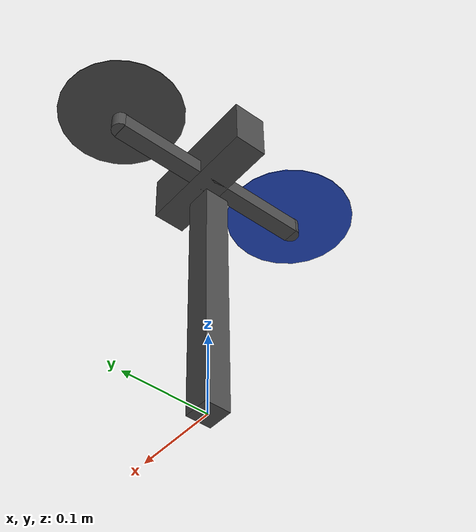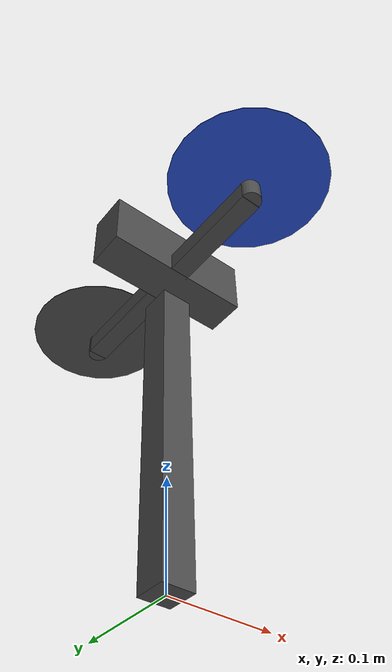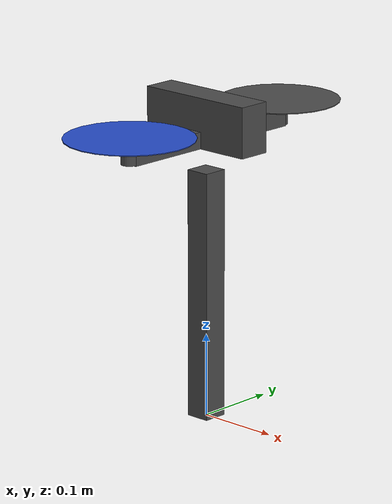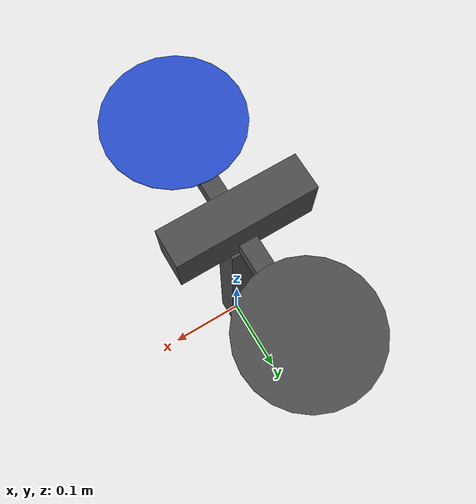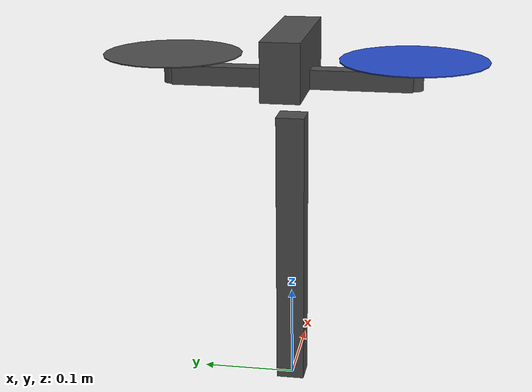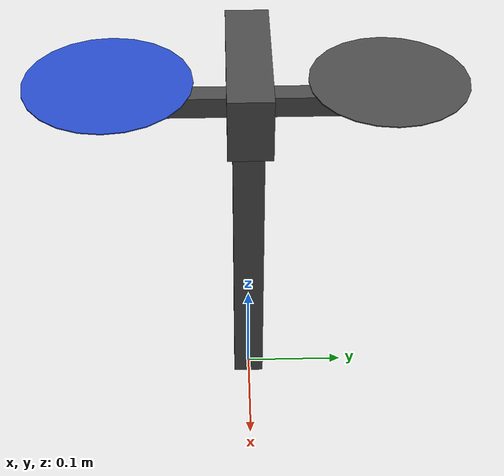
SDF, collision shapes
<?xml version="1.0"?>

<sdf version='1.5'>
  <model name='bicopter'>
    <pose>0 0 0 0 0 0</pose>
    <link name='test_stand_link'>
      <pose>0 0 0.15 0 0 0</pose>
      <inertial>
        <pose>0 0 0 0 0 0</pose>
        <mass>1000</mass>
        <inertia>
          <ixx>1.97563</ixx>
          <ixy>0</ixy>
          <ixz>0</ixz>
          <iyy>1.458929</iyy>
          <iyz>0</iyz>
          <izz>1.477</izz>
        </inertia>
      </inertial>
      <collision name='test_stand_link_collision'>
        <pose>0 0 0 0 0 0</pose>
        <geometry>
          <box>
            <size>0.03 0.03 0.3</size>
          </box>
        </geometry>
      </collision>
      <visual name='test_stand_link_visual'>
        <pose>0 0 0 0 0 0</pose>
        <geometry>
          <box>
            <size>0.03 0.03 0.3</size>
          </box>
        </geometry>
        <material>
          <script>
            <name>Gazebo/DarkGrey</name>
            <uri>__default__</uri>
          </script>
        </material>
      </visual>
      <gravity>1</gravity>
      <velocity_decay/>
      <self_collide>0</self_collide>
    </link>
    <joint name='stand/bicopter' type='ball'>
      <child>base_link</child>
      <parent>test_stand_link</parent>
      <pose>0 0 0.03 0 0 0</pose>
      <axis>
        <xyz>1 0 0</xyz>
        <limit>
          <lower>-1.5</lower>
          <upper>1.5</upper>
          <effort>0</effort>
          <velocity>0</velocity>
        </limit>
        <dynamics>
          <spring_reference>0</spring_reference>
          <spring_stiffness>0</spring_stiffness>
        </dynamics>
        <use_parent_model_frame>1</use_parent_model_frame>
      </axis>
      <axis2>
        <xyz>0 1 0</xyz>
        <limit>
          <lower>-1.5</lower>
          <upper>1.5</upper>
          <effort>0</effort>
          <velocity>0</velocity>
        </limit>
        <dynamics>
          <spring_reference>0</spring_reference>
          <spring_stiffness>0</spring_stiffness>
        </dynamics>
        <use_parent_model_frame>1</use_parent_model_frame>
      </axis2>
      <ode>
        <limit>
          <erp>1</erp>
        </limit>
      </ode>
    </joint>

    <link name='base_link'>
      <pose>0 0 0.33 0 0 0</pose>
      <inertial>
        <pose>0 0 0 0 0 0</pose>
        <mass>0.7</mass>
        <inertia>
          <ixx>1.8958E-04</ixx>
          <ixy>0</ixy>
          <ixz>0</ixz>
          <iyy>	1.4306E-03</iyy>
          <iyz>0</iyz>
          <izz>1.3840E-03</izz>
        </inertia>
      </inertial>
      <collision name='base_link_collision'>
        <pose>0 0 0.03 0 0 0</pose>
        <geometry>
          <box>
            <size>0.15 0.04 0.06</size>
          </box>
        </geometry>
        <surface>
          <contact>
            <ode>
              <max_vel>10</max_vel>
              <min_depth>0.01</min_depth>
            </ode>
          </contact>
        </surface>
      </collision>
      <visual name='base_link_visual'>
        <pose>0 0 0.03 0 0 0</pose>
        <geometry>
          <box>
            <size>0.15 0.04 0.06</size>
          </box>
        </geometry>
        <material>
          <script>
            <name>Gazebo/DarkGrey</name>
            <uri>__default__</uri>
          </script>
        </material>
      </visual>
      <collision name='motor_column_collision'>
        <pose>0 0 0.01 0 0 0</pose>
        <geometry>
          <box>
            <size>0.02 0.25 0.02</size>
          </box>
        </geometry>
        <surface>
          <contact>
            <ode>
              <max_vel>10</max_vel>
              <min_depth>0.01</min_depth>
            </ode>
          </contact>
        </surface>
      </collision>
      <visual name='left_motor_column'>
        <pose>0 0.0625 0.01 0 0 0</pose>
        <geometry>
          <box>
            <size>0.02 0.125 0.02</size>
          </box>
        </geometry>
        <material>
          <script>
            <name>Gazebo/DarkGrey</name>
            <uri>__default__</uri>
          </script>
        </material>
      </visual>
      <visual name='right_motor_column'>
        <pose>0 -0.0625 0.01 0 0 0</pose>
        <geometry>
          <box>
            <size>0.02 0.125 0.02</size>
          </box>
        </geometry>
        <material>
          <script>
            <name>Gazebo/DarkGrey</name>
            <uri>__default__</uri>
          </script>
        </material>
      </visual>
      <gravity>1</gravity>
      <velocity_decay/>
      <self_collide>0</self_collide>
    </link>
    <link name='bicopter/imu_link'>
      <pose>0 0 0.36 0 0 0</pose>
      <inertial>
        <pose>0 0 0 0 0 0</pose>
        <mass>0.015</mass>
        <inertia>
          <ixx>1e-05</ixx>
          <ixy>0</ixy>
          <ixz>0</ixz>
          <iyy>1e-05</iyy>
          <iyz>0</iyz>
          <izz>1e-05</izz>
        </inertia>
      </inertial>
    </link>
    <joint name='bicopter/imu_joint' type='revolute'>
      <child>bicopter/imu_link</child>
      <parent>base_link</parent>
      <axis>
        <xyz>1 0 0</xyz>
        <limit>
          <lower>0</lower>
          <upper>0</upper>
          <effort>0</effort>
          <velocity>0</velocity>
        </limit>
        <dynamics>
          <spring_reference>0</spring_reference>
          <spring_stiffness>0</spring_stiffness>
        </dynamics>
        <use_parent_model_frame>1</use_parent_model_frame>
      </axis>
    </joint>

    <link name='motor_0'>
      <pose>0 -0.125 0.341 0 0 0</pose>
      <inertial>
        <pose>0 0 0 0 0 0</pose>
        <mass>0.030</mass>
        <inertia>
          <ixx>2.2695E-06</ixx>
          <ixy>0</ixy>
          <ixz>0</ixz>
          <iyy>2.2695E-06</iyy>
          <iyz>0</iyz>
          <izz>2.9190E-06</izz>
        </inertia>
      </inertial>
      <collision name='motor_0_collision'>
        <pose>0 0 0 0 0 0</pose>
        <geometry>
          <cylinder>
            <length>0.02</length>
            <radius>0.01</radius>
          </cylinder>
        </geometry>
        <surface>
          <contact>
            <ode/>
          </contact>
          <friction>
            <ode/>
          </friction>
        </surface>
      </collision>
      <visual name='motor_0_visual'>
        <pose>0 0 0 0 0 0</pose>
        <geometry>
          <cylinder>
            <length>0.02</length>
            <radius>0.01</radius>
          </cylinder>
        </geometry>
        <material>
          <script>
            <name>Gazebo/DarkGrey</name>
            <uri>__default__</uri>
          </script>
        </material>
      </visual>
      <gravity>1</gravity>
      <velocity_decay/>
      <self_collide>0</self_collide>
    </link>

    <link name='motor_0_intermediate'>
      <pose>0 -0.125 0.361 0 0 0</pose>
      <inertial>
        <pose>0 0 0 0 0 0</pose>
        <mass>0.015</mass>
        <inertia>
          <ixx>2.4100E-06</ixx>
          <ixy>0</ixy>
          <ixz>0</ixz>
          <iyy>2.4100E-06</iyy>
          <iyz>0</iyz>
          <izz>1.2100E-06</izz>
        </inertia>
      </inertial>
      <gravity>0</gravity>
      <velocity_decay/>
      <self_collide>0</self_collide>
    </link>

    <joint name='motor_0_joint_a' type='revolute'>
      <child>motor_0_intermediate</child>
      <parent>base_link</parent>
      <pose>0 0 0 0 0 0</pose>
      <axis>
        <xyz>0 1 0</xyz>
        <limit>
          <velocity>15</velocity>
        </limit>
        <dynamics>
          <spring_reference>0</spring_reference>
          <spring_stiffness>1</spring_stiffness>
          <damping>0.01</damping>
        </dynamics>
        <use_parent_model_frame>1</use_parent_model_frame>
      </axis>
      <physics>
        <ode>
          <erp>1</erp>
        </ode>
      </physics>
    </joint>
    <joint name='motor_0_joint_b' type='revolute'>
      <child>motor_0</child>
      <parent>motor_0_intermediate</parent>
      <pose>0 0 0.02 0 0 0</pose>
      <axis>
        <xyz>1 0 0</xyz>
        <limit>
          <velocity>15</velocity>
        </limit>
        <dynamics>
          <spring_reference>0</spring_reference>
          <spring_stiffness>1</spring_stiffness>
          <damping>0.01</damping>
        </dynamics>
        <use_parent_model_frame>1</use_parent_model_frame>
      </axis>
      <physics>
        <ode>
          <erp>1</erp>
        </ode>
      </physics>
    </joint>

    <link name='rotor_0'>
      <pose>0 -0.125 0.361 0 0 0</pose>
      <inertial>
        <pose>0 0 0 0 0 0</pose>
        <mass>0.01</mass>
        <inertia>
          <ixx>9.0833E-08</ixx>
          <ixy>0</ixy>
          <ixz>0</ixz>
          <iyy>1.9261E-06</iyy>
          <iyz>0</iyz>
          <izz>1.9337E-06</izz>
        </inertia>
      </inertial>
      <collision name='rotor_0_collision'>
        <pose>0 0 0 0 0 0</pose>
        <geometry>
          <cylinder>
            <length>0.001</length>
            <radius>0.0762</radius>
          </cylinder>
        </geometry>
        <surface>
          <contact>
            <ode/>
          </contact>
          <friction>
            <ode/>
          </friction>
        </surface>
      </collision>
      <visual name='rotor_0_visual'>
        <pose>0.001750 0 0 0 0 0</pose>
        <geometry>
          <mesh>
            <scale>0.38 0.38 0.38</scale>
            <uri>model://tiltrotor/meshes/iris_prop_ccw.dae</uri>
          </mesh>
        </geometry>
        <material>
          <script>
            <name>Gazebo/Blue</name>
            <uri>__default__</uri>
          </script>
        </material>
      </visual>
      <gravity>1</gravity>
      <velocity_decay/>
      <self_collide>0</self_collide>
    </link>
    <joint name='rotor_0_joint' type='revolute'>
      <child>rotor_0</child>
      <parent>motor_0</parent>
      <axis>
        <xyz>0 0 1</xyz>
        <limit>
          <lower>-1e+16</lower>
          <upper>1e+16</upper>
        </limit>
        <dynamics>
          <spring_reference>0</spring_reference>
          <spring_stiffness>0</spring_stiffness>
        </dynamics>
        <use_parent_model_frame>1</use_parent_model_frame>
      </axis>
      <physics>
        <ode>
          <erp>1</erp>
        </ode>
      </physics>
    </joint>

    <link name='motor_1'>
      <pose>0 0.125 0.341 0 0 0</pose>
      <inertial>
        <pose>0 0 0 0 0 0</pose>
        <mass>0.030</mass>
        <inertia>
          <ixx>2.2695E-06</ixx>
          <ixy>0</ixy>
          <ixz>0</ixz>
          <iyy>	2.2695E-06</iyy>
          <iyz>0</iyz>
          <izz>2.9190E-06</izz>
        </inertia>
      </inertial>
      <collision name='motor_1_collision'>
        <pose>0 0 0 0 0 0</pose>
        <geometry>
          <cylinder>
            <length>0.02</length>
            <radius>0.01</radius>
          </cylinder>
        </geometry>
        <surface>
          <contact>
            <ode/>
          </contact>
          <friction>
            <ode/>
          </friction>
        </surface>
      </collision>
      <visual name='motor_1_visual'>
        <pose>0.001750 0 0 0 0 0</pose>
        <geometry>
          <cylinder>
            <length>0.02</length>
            <radius>0.01</radius>
          </cylinder>
        </geometry>
        <material>
          <script>
            <name>Gazebo/DarkGrey</name>
            <uri>__default__</uri>
          </script>
        </material>
      </visual>
      <gravity>1</gravity>
      <velocity_decay/>
      <self_collide>0</self_collide>
    </link>

    <link name='motor_1_intermediate'>
      <pose>0 0.125 0.361 0 0 0</pose>
      <inertial>
        <pose>0 0 0 0 0 0</pose>
        <mass>0.015</mass>
        <inertia>
          <ixx>2.4100E-06</ixx>
          <ixy>0</ixy>
          <ixz>0</ixz>
          <iyy>2.4100E-06</iyy>
          <iyz>0</iyz>
          <izz>1.2100E-06</izz>
        </inertia>
      </inertial>
      <gravity>0</gravity>
      <velocity_decay/>
      <self_collide>0</self_collide>
    </link>

    <joint name='motor_1_joint_a' type='revolute'>
      <child>motor_1_intermediate</child>
      <parent>base_link</parent>
      <pose>0 0 0 0 0 0</pose>
      <axis>
        <xyz>0 1 0</xyz>
        <limit>
          <velocity>15</velocity>
        </limit>
        <dynamics>
          <spring_reference>0</spring_reference>
          <spring_stiffness>1</spring_stiffness>
          <damping>0.01</damping>
        </dynamics>
        <use_parent_model_frame>1</use_parent_model_frame>
      </axis>
      <physics>
        <ode>
          <erp>1</erp>
        </ode>
      </physics>
    </joint>
    <joint name='motor_1_joint_b' type='revolute'>
      <child>motor_1</child>
      <parent>motor_1_intermediate</parent>
      <pose>0 0 0.02 0 0 0</pose>
      <axis>
        <xyz>1 0 0</xyz>
        <limit>
          <velocity>15</velocity>
        </limit>
        <dynamics>
          <spring_reference>0</spring_reference>
          <spring_stiffness>1</spring_stiffness>
          <damping>0.01</damping>
        </dynamics>
        <use_parent_model_frame>1</use_parent_model_frame>
      </axis>
      <physics>
        <ode>
          <erp>1</erp>
        </ode>
      </physics>
    </joint>

    <link name='rotor_1'>
      <pose>0 0.125 0.361 0 0 0</pose>
      <inertial>
        <pose>0 0 0 0 0 0</pose>
        <mass>0.01</mass>
        <inertia>
          <ixx>9.0833E-08</ixx>
          <ixy>0</ixy>
          <ixz>0</ixz>
          <iyy>1.9261E-06</iyy>
          <iyz>0</iyz>
          <izz>1.9337E-06</izz>
        </inertia>
      </inertial>
      <collision name='rotor_1_collision'>
        <pose>0 0 0 0 0 0</pose>
        <geometry>
          <cylinder>
            <length>0.001</length>
            <radius>0.072</radius>
          </cylinder>
        </geometry>
        <surface>
          <contact>
            <ode/>
          </contact>
          <friction>
            <ode/>
          </friction>
        </surface>
      </collision>
      <visual name='rotor_1_visual'>
        <pose>0 0 0 0 0 0</pose>
        <geometry>
          <mesh>
            <scale>0.38 0.38 0.38</scale>
            <uri>model://tiltrotor/meshes/iris_prop_ccw.dae</uri>
          </mesh>
        </geometry>
        <material>
          <script>
            <name>Gazebo/DarkGrey</name>
            <uri>__default__</uri>
          </script>
        </material>
      </visual>
      <gravity>1</gravity>
      <velocity_decay/>
      <self_collide>0</self_collide>
    </link>
    <joint name='rotor_1_joint' type='revolute'>
      <child>rotor_1</child>
      <parent>motor_1</parent>
      <axis>
        <xyz>0 0 1</xyz>
        <limit>
          <lower>-1e+16</lower>
          <upper>1e+16</upper>
        </limit>
        <dynamics>
          <spring_reference>0</spring_reference>
          <spring_stiffness>0</spring_stiffness>
        </dynamics>
        <use_parent_model_frame>1</use_parent_model_frame>
      </axis>
      <physics>
        <ode>
          <erp>1</erp>
        </ode>
      </physics>
    </joint>

    <plugin name='right_motor_model' filename='libgazebo_motor_model.so'>
      <robotNamespace></robotNamespace>
      <jointName>rotor_0_joint</jointName>
      <linkName>rotor_0</linkName>
      <turningDirection>cw</turningDirection>
      <timeConstantUp>0.0125</timeConstantUp>
      <timeConstantDown>0.0025</timeConstantDown>
      <maxRotVelocity>1500</maxRotVelocity>
      <motorConstant>5e-06</motorConstant>
      <momentConstant>0.02</momentConstant>
      <commandSubTopic>/gazebo/command/motor_speed</commandSubTopic>
      <motorNumber>0</motorNumber>
      <rotorDragCoefficient>0.00000806428</rotorDragCoefficient>
      <rollingMomentCoefficient>0</rollingMomentCoefficient>
      <motorSpeedPubTopic>/motor_speed/0</motorSpeedPubTopic>
      <rotorVelocitySlowdownSim>20</rotorVelocitySlowdownSim>
    </plugin>
    <plugin name='left_motor_model' filename='libgazebo_motor_model.so'>
      <robotNamespace></robotNamespace>
      <jointName>rotor_1_joint</jointName>
      <linkName>rotor_1</linkName>
      <turningDirection>ccw</turningDirection>
      <timeConstantUp>0.0125</timeConstantUp>
      <timeConstantDown>0.0025</timeConstantDown>
      <maxRotVelocity>1500</maxRotVelocity>
      <motorConstant>5e-06</motorConstant>
      <momentConstant>0.02</momentConstant>
      <commandSubTopic>/gazebo/command/motor_speed</commandSubTopic>
      <motorNumber>1</motorNumber>
      <rotorDragCoefficient>0.00000806428</rotorDragCoefficient>
      <rollingMomentCoefficient>0</rollingMomentCoefficient>
      <motorSpeedPubTopic>/motor_speed/1</motorSpeedPubTopic>
      <rotorVelocitySlowdownSim>20</rotorVelocitySlowdownSim>
    </plugin>

    <plugin name='gazebo_imu_plugin' filename='libgazebo_imu_plugin.so'>
      <robotNamespace></robotNamespace>
      <linkName>bicopter/imu_link</linkName>
      <imuTopic>/imu</imuTopic>
      <gyroscopeNoiseDensity>0</gyroscopeNoiseDensity>
      <gyroscopeRandomWalk>3.8785e-05</gyroscopeRandomWalk>
      <gyroscopeBiasCorrelationTime>1000.0</gyroscopeBiasCorrelationTime>
      <gyroscopeTurnOnBiasSigma>0</gyroscopeTurnOnBiasSigma>
      <accelerometerNoiseDensity>0</accelerometerNoiseDensity>
      <accelerometerRandomWalk>0.006</accelerometerRandomWalk>
      <accelerometerBiasCorrelationTime>300.0</accelerometerBiasCorrelationTime>
      <accelerometerTurnOnBiasSigma>0</accelerometerTurnOnBiasSigma>
    </plugin>
    <plugin name="gps_plugin" filename="libgazebo_gps_plugin.so">
        <robotNamespace></robotNamespace>
        <gpsNoise>false</gpsNoise>
    </plugin>
    <plugin name='magnetometer_plugin' filename='libgazebo_magnetometer_plugin.so'>
      <robotNamespace/>
      <pubRate>20</pubRate>
      <noiseDensity>0.0004</noiseDensity>
      <randomWalk>6.4e-06</randomWalk>
      <biasCorrelationTime>600</biasCorrelationTime>
      <magTopic>/mag</magTopic>
    </plugin>
    <plugin name='barometer_plugin' filename='libgazebo_barometer_plugin.so'>
      <robotNamespace/>
      <pubRate>10</pubRate>
      <baroTopic>/baro</baroTopic>
    </plugin>
    <plugin name='mavlink_interface' filename='libgazebo_mavlink_interface.so'>
      <robotNamespace></robotNamespace>
      <imuSubTopic>/imu</imuSubTopic>
      <gpsSubTopic>/gps</gpsSubTopic>
      <magSubTopic>/mag</magSubTopic>
      <baroSubTopic>/baro</baroSubTopic>
      <mavlink_addr>INADDR_ANY</mavlink_addr>
      <mavlink_udp_port>14560</mavlink_udp_port>
      <serialEnabled>false</serialEnabled>
      <serialDevice>/dev/ttyACM0</serialDevice>
      <baudRate>921600</baudRate>
      <qgc_addr>INADDR_ANY</qgc_addr>
      <qgc_udp_port>14550</qgc_udp_port>
      <sdk_addr>INADDR_ANY</sdk_addr>
      <sdk_udp_port>14540</sdk_udp_port>
      <hil_mode>false</hil_mode>
      <hil_state_level>false</hil_state_level>
      <enable_lockstep>false</enable_lockstep>
      <use_tcp>true</use_tcp>
      <motorSpeedCommandPubTopic>/gazebo/command/motor_speed</motorSpeedCommandPubTopic>
      <control_channels>
        <channel name="rotor0">
          <input_index>0</input_index>
          <input_offset>0</input_offset>
          <input_scaling>1500</input_scaling>
          <zero_position_disarmed>0</zero_position_disarmed>
          <zero_position_armed>0</zero_position_armed>
          <joint_control_type>velocity</joint_control_type>
          <joint_name>rotor_0_joint</joint_name>
        </channel>
        <channel name="rotor1">
          <input_index>1</input_index>
          <input_offset>0</input_offset>
          <input_scaling>1500</input_scaling>
          <zero_position_disarmed>0</zero_position_disarmed>
          <zero_position_armed>0</zero_position_armed>
          <joint_control_type>velocity</joint_control_type>
          <joint_name>rotor_1_joint</joint_name>
        </channel>

        <channel name="motor0_tilt_a">
          <input_index>4</input_index>
          <input_offset>0</input_offset>
          <input_scaling>2.2</input_scaling>
          <zero_position_disarmed>0</zero_position_disarmed>
          <zero_position_armed>0</zero_position_armed>
          <joint_control_type>position</joint_control_type>
          <joint_name>motor_0_joint_a</joint_name>
          <joint_control_pid>
            <p>2</p>
            <i>0</i>
            <d>0</d>
            <iMax>0.0</iMax>
            <iMin>0.0</iMin>
            <cmdMax>2</cmdMax>
            <cmdMin>-2</cmdMin>
          </joint_control_pid>
        </channel>
        <channel name="motor0_tilt_b">
          <input_index>5</input_index>
          <input_offset>0</input_offset>
          <input_scaling>2.2</input_scaling>
          <zero_position_disarmed>0</zero_position_disarmed>
          <zero_position_armed>0</zero_position_armed>
          <joint_control_type>position</joint_control_type>
          <joint_name>motor_0_joint_b</joint_name>
          <joint_control_pid>
            <p>2</p>
            <i>0</i>
            <d>0</d>
            <iMax>0.0</iMax>
            <iMin>0.0</iMin>
            <cmdMax>2</cmdMax>
            <cmdMin>-2</cmdMin>
          </joint_control_pid>
        </channel>
        <channel name="motor1_tilt_a">
          <input_index>6</input_index>
          <input_offset>0</input_offset>
          <input_scaling>2.2</input_scaling>
          <zero_position_disarmed>0</zero_position_disarmed>
          <zero_position_armed>0</zero_position_armed>
          <joint_control_type>position</joint_control_type>
          <joint_name>motor_1_joint_a</joint_name>
          <joint_control_pid>
            <p>2</p>
            <i>0</i>
            <d>0</d>
            <iMax>0.0</iMax>
            <iMin>0.0</iMin>
            <cmdMax>2</cmdMax>
            <cmdMin>-2</cmdMin>
          </joint_control_pid>
        </channel>
        <channel name="motor1_tilt_b">
          <input_index>7</input_index>
          <input_offset>0</input_offset>
          <input_scaling>2.2</input_scaling>
          <zero_position_disarmed>0</zero_position_disarmed>
          <zero_position_armed>0</zero_position_armed>
          <joint_control_type>position</joint_control_type>
          <joint_name>motor_1_joint_b</joint_name>
          <joint_control_pid>
            <p>2</p>
            <i>0</i>
            <d>0</d>
            <iMax>0.0</iMax>
            <iMin>0.0</iMin>
            <cmdMax>2</cmdMax>
            <cmdMin>-2</cmdMin>
          </joint_control_pid>
        </channel>
      </control_channels>
    </plugin>
    <static>0</static>
  </model>
</sdf>
